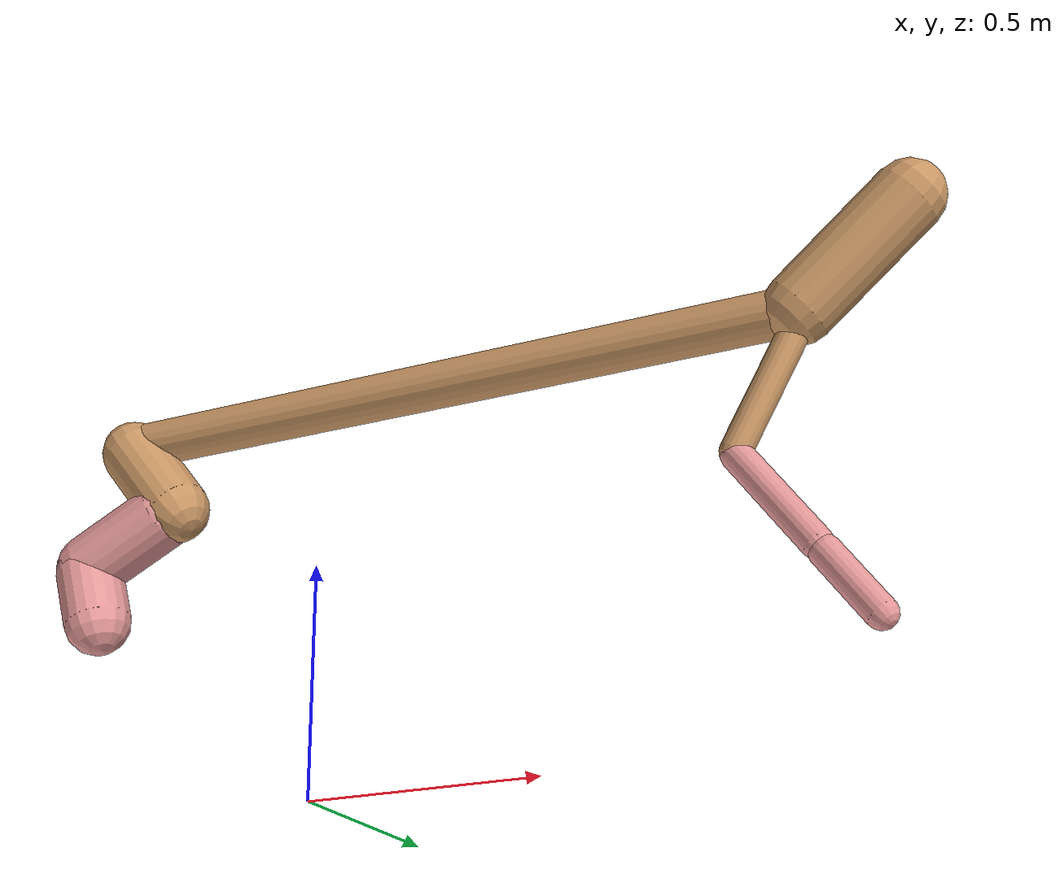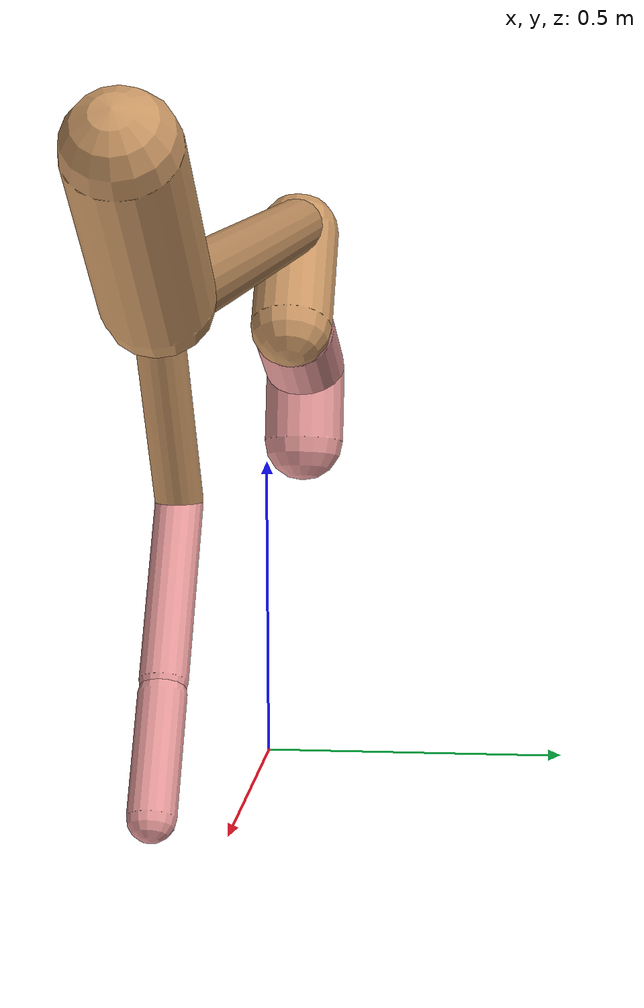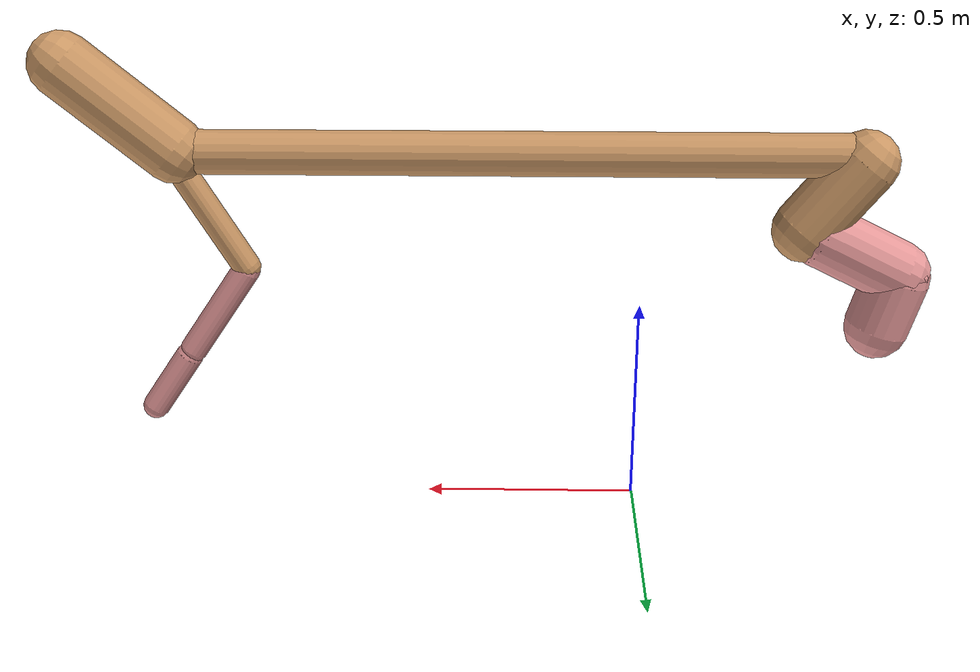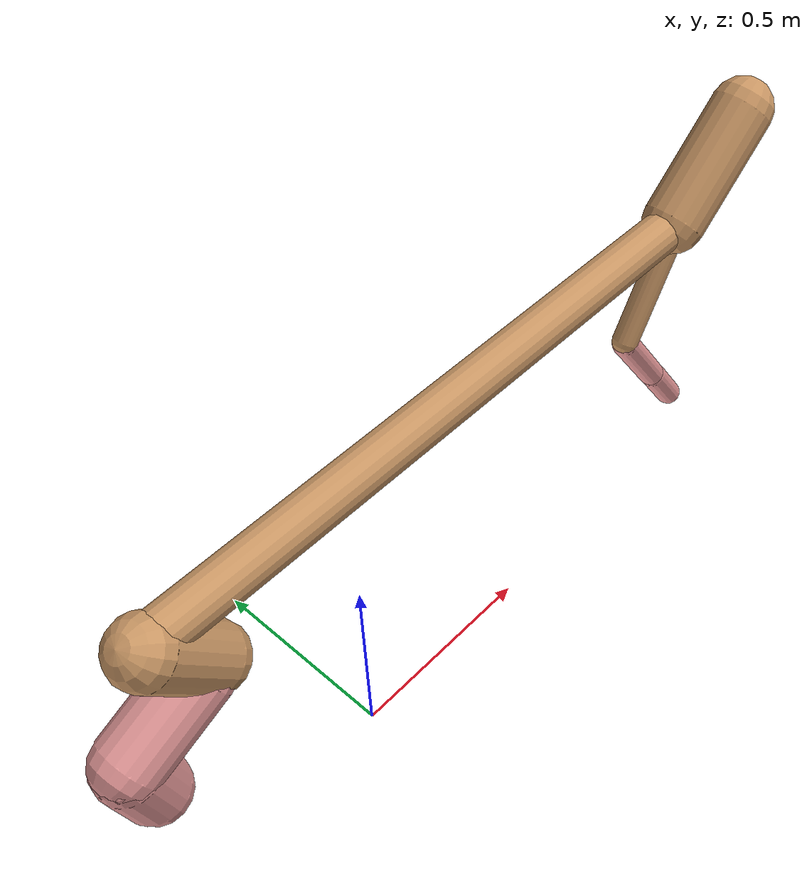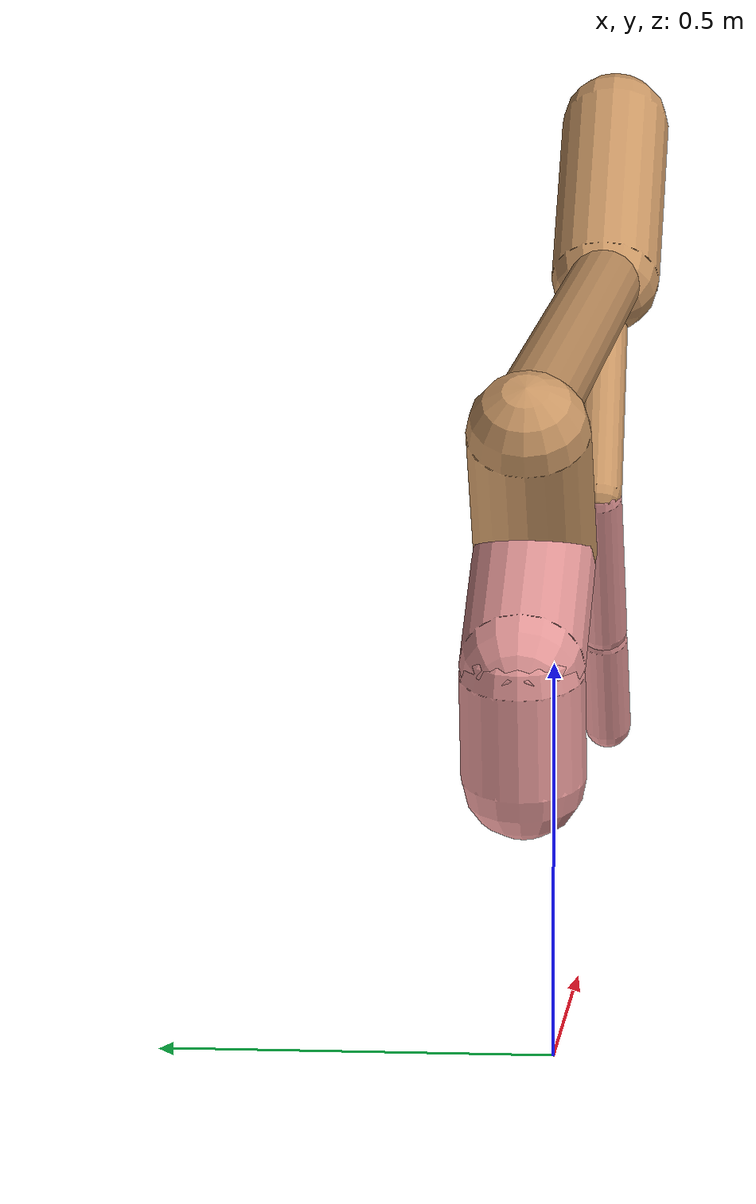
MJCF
<mujoco model="cheetah">
  <compiler angle="radian" coordinate="local" inertiafromgeom="true" settotalmass="14" />
  <default>
    <joint armature=".1" damping=".01" limited="true" solimplimit="0 .8 .03" solreflimit=".02 1" stiffness="8" />
    <geom conaffinity="0" condim="3" contype="1" friction="0.8 .1 .1" rgba="0.8 0.6 .4 1" solimp="0.0 0.8 0.01" solref="0.02 1" />
    <motor ctrllimited="true" ctrlrange="-1 1" />
  </default>
  <size nstack="300000" nuser_geom="1" />
  <option gravity="0 0 -9.81" timestep="0.01" />
  <worldbody>
    <body name="torso" pos="0.0 0.0 0.8680142758631773">
      <joint armature="0" axis="1 0 0" damping="0" limited="false" name="ignorex" pos="0 0 0" stiffness="0" type="slide" />
      <joint armature="0" axis="0 0 1" damping="0" limited="false" name="ignorez" pos="0 0 0" stiffness="0" type="slide" />
      <joint armature="0" axis="0 1 0" damping="0" limited="false" name="ignorey" pos="0 0 0" stiffness="0" type="hinge" />
      <geom fromto="-0.5 0.0 0.0 1.072278724601452 0.0 0.0" name="torso" size="0.05037012617388484" type="capsule" />
      <geom axisangle="0 1 0 .87" name="head" pos="1.172278724601452 0.0 0.1" size="0.07468890452670637 0.15" type="capsule" />

      <body name="bthigh" pos="-.5 0 0">
        <joint axis="0 1 0" damping="6" name="bthigh" pos="0 0 0" range="-.52 1.05" stiffness="240" type="hinge" />
        <geom axisangle="0 1 0 -3.8" name="bthigh" pos="0.0734775819030384 0.0 -0.0955208564739499" size="0.07442018110557136 0.10149999999999999" type="capsule" />
        <body name="bshin" pos="0.10695516380607678 0.0 -0.18104171294789978">
          <joint axis="0 1 0" damping="4.5" name="bshin" pos="0 0 0" range="-.785 .785" stiffness="180" type="hinge" />
          <geom axisangle="0 1 0 -2.03" name="bshin" pos="-0.0997507764050038 0.0 -0.0498753882025019" rgba="0.9 0.6 0.6 1" size="0.07442018110557136 0.105" type="capsule" />
          <body name="bfoot" pos="-0.1995015528100076 0.0 -0.0997507764050038">
            <joint axis="0 1 0" damping="3" name="bfoot" pos="0 0 0" range="-.4 .785" stiffness="120" type="hinge" />
            <geom axisangle="0 1 0 -.27" name="bfoot" pos="0.021667753813597694 0.0 -0.07005907066396588" rgba="0.9 0.6 0.6 1" size="0.07442018110557136 0.0658" type="capsule" />
            <inertial mass="10" />
          </body>
        </body>
      </body>
      <body name="fthigh" pos="1.072278724601452 0.0 0.0">
        <joint axis="0 1 0" damping="4.5" name="fthigh" pos="0 0 0" range="-1.5 0.8" stiffness="180" type="hinge" />
        <geom axisangle="0 1 0 .52" name="fthigh" pos="-0.08177766829402527 0.0 -0.1401902885040433" size="0.0322 0.15637437101443785" type="capsule" />
        <body name="fshin" pos="-0.16355533658805055 0.0 -0.2803805770080866">
          <joint axis="0 1 0" damping="3" name="fshin" pos="0 0 0" range="-1.2 1.1" stiffness="120" type="hinge" />
          <geom axisangle="0 1 0 -.6" name="fshin" pos="0.0759072194262159 0.0 -0.1051023038209143" rgba="0.9 0.6 0.6 1" size="0.0322 0.12462919795135646" type="capsule" />
          <body name="ffoot" pos="0.1518144388524318 0.0 -0.2102046076418286">
            <joint axis="0 1 0" damping="1.5" name="ffoot" pos="0 0 0" range="-3.1 -0.3" stiffness="60" type="hinge" />
            <geom axisangle="0 1 0 -.6" name="ffoot" pos="0.051652562404334454 0.0 -0.0803484304067425" rgba="0.9 0.6 0.6 1" size="0.0322 0.08230230053391466" type="capsule" />
            <inertial mass="10" />
          </body>
        </body>
      </body>
    </body>
  </worldbody>
  <actuator>
    <motor gear="120" joint="bthigh" name="bthigh" />
    <motor gear="90" joint="bshin" name="bshin" />
    <motor gear="60" joint="bfoot" name="bfoot" />
    <motor gear="120" joint="fthigh" name="fthigh" />
    <motor gear="60" joint="fshin" name="fshin" />
    <motor gear="30" joint="ffoot" name="ffoot" />
  </actuator>
</mujoco>
